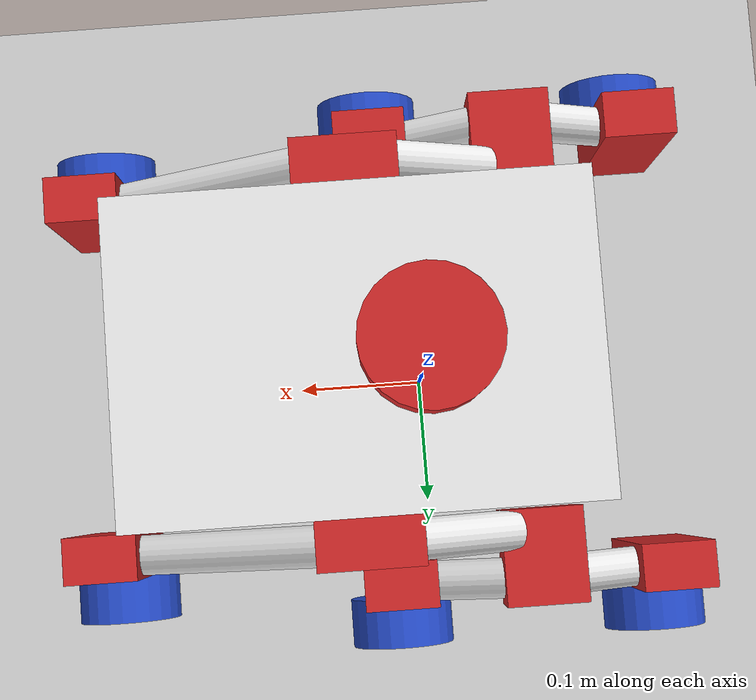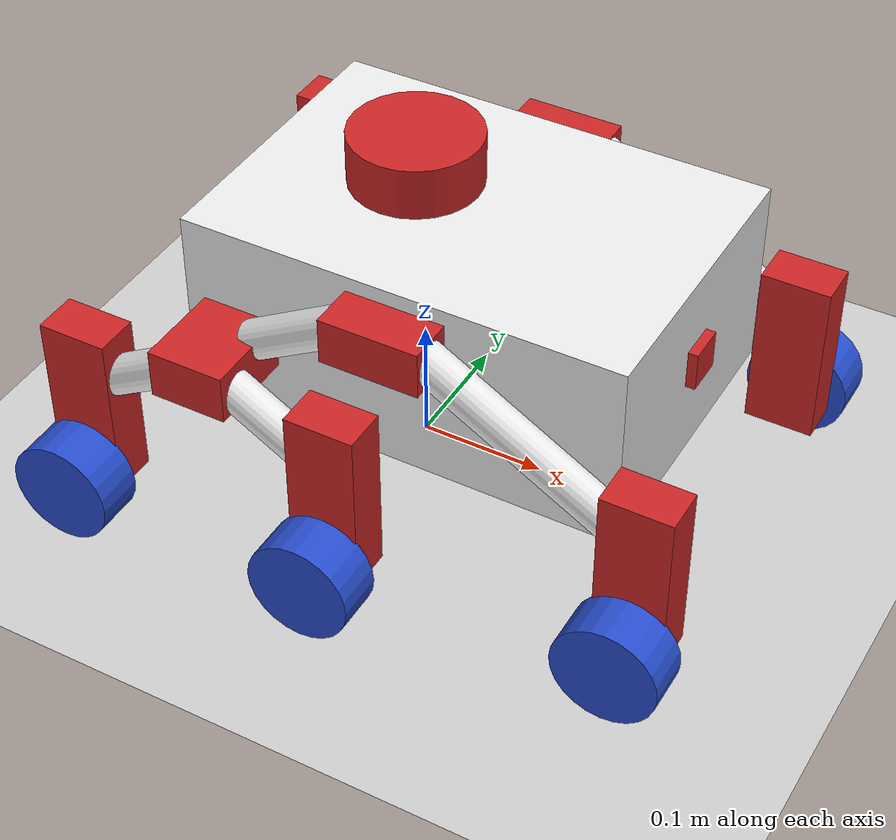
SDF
<sdf version="1.7">
 <world name="default">
  <light name="sun" type="directional">
   <pose>0 0 10 0 -0 0</pose>
   <diffuse>0.8 0.8 0.8 1</diffuse>
   <specular>0.2 0.2 0.2 1</specular>
   <attenuation>
    <range>1000</range>
    <constant>0.9</constant>
    <linear>0.01</linear>
    <quadratic>0.001</quadratic>
   </attenuation>
   <direction>-0.5 0.1 -0.9</direction>
   <spot><inner_angle>0</inner_angle><outer_angle>0</outer_angle><falloff>0</falloff></spot>
  </light>
  <model name="ground_plane">
   <static>1</static>
   <link name="link">
    <collision name="collision">
     <geometry><plane><normal>0 0 1</normal><size>100 100</size></plane></geometry>
     <surface><friction><ode><mu>100</mu><mu2>50</mu2></ode></friction></surface>
    </collision>
    <visual name="visual">
     <cast_shadows>0</cast_shadows>
     <geometry><plane><normal>0 0 1</normal><size>100 100</size></plane></geometry>
     <material>
      <script><uri>file://media/materials/scripts/gazebo.material</uri><name>Gazebo/Grey</name></script>
     </material>
    </visual>
   </link>
  </model>
  <gravity>0 0 -9.8</gravity>
  <magnetic_field>6e-06 2.3e-05 -4.2e-05</magnetic_field>
  <atmosphere type="adiabatic"/>
  <physics type="ode">
   <max_step_size>0.001</max_step_size>
   <real_time_factor>1</real_time_factor>
   <real_time_update_rate>1000</real_time_update_rate>
  </physics>
  <scene><ambient>0.4 0.4 0.4 1</ambient><background>0.7 0.7 0.7 1</background><shadows>1</shadows></scene>
  <audio><device>default</device></audio>
  <spherical_coordinates>
   <surface_model>EARTH_WGS84</surface_model>
   <latitude_deg>0</latitude_deg>
   <longitude_deg>0</longitude_deg>
   <elevation>0</elevation>
   <heading_deg>0</heading_deg>
  </spherical_coordinates>
  <model name="my_bot">
   <link name="base_link">
    <inertial>
     <pose>0.019607 -0 0.047143 0 -0 0</pose>
     <mass>2.8</mass>
     <inertia>
      <ixx>0.0695357</ixx>
      <ixy>7.95861e-11</ixy>
      <ixz>0.000761689</ixz>
      <iyy>0.0640238</iyy>
      <iyz>-1.35e-05</iyz>
      <izz>0.11307</izz>
     </inertia>
    </inertial>
    <collision name="base_link_fixed_joint_lump__chassis_collision">
     <pose>0.05 0 0.075 0 -0 0</pose>
     <geometry><box><size>0.345 0.234 0.15</size></box></geometry>
    </collision>
    <collision name="base_link_fixed_joint_lump__laser_frame_collision_1">
     <pose>0 0 0.175 0 -0 0</pose>
     <geometry><cylinder><length>0.04</length><radius>0.05</radius></cylinder></geometry>
    </collision>
    <collision name="base_link_fixed_joint_lump__left_mount_atas_collision_2">
     <pose>0.05 0.135 0.12 0 -0 0</pose>
     <geometry><box><size>0.077 0.036 0.036</size></box></geometry>
    </collision>
    <collision name="base_link_fixed_joint_lump__left_mount_bawah_collision_3">
     <pose>-0.075 0.155 0.07 0 -0 1.5708</pose>
     <geometry><box><size>0.07 0.06 0.038</size></box></geometry>
    </collision>
    <collision name="base_link_fixed_joint_lump__left_mount_motor_belakang_collision_4">
     <pose>0.25 0.135 0.005 0 -0 0</pose>
     <geometry><box><size>0.0545 0.0348 0.135211</size></box></geometry>
    </collision>
    <collision name="base_link_fixed_joint_lump__left_mount_motor_depan_collision_5">
     <pose>-0.175 0.17 0.005 0 -0 0</pose>
     <geometry><box><size>0.0545 0.0348 0.135211</size></box></geometry>
    </collision>
    <collision name="base_link_fixed_joint_lump__left_mount_motor_tengah_collision_6">
     <pose>0.03 0.17 0.005 0 -0 0</pose>
     <geometry><box><size>0.0545 0.0348 0.135211</size></box></geometry>
    </collision>
    <collision name="base_link_fixed_joint_lump__left_suspensi_dua_collision_7">
     <pose>-0.018 0.135 0.1025 0 1.0472 0</pose>
     <geometry><cylinder><length>0.085</length><radius>0.015</radius></cylinder></geometry>
    </collision>
    <collision name="base_link_fixed_joint_lump__left_suspensi_empat_collision_8">
     <pose>-0.125 0.17 0.05 0 1.0472 0</pose>
     <geometry><cylinder><length>0.071</length><radius>0.015</radius></cylinder></geometry>
    </collision>
    <collision name="base_link_fixed_joint_lump__left_suspensi_satu_collision_9">
     <pose>0.16 0.135 0.078 3.14159 1.04719 3.14159</pose>
     <geometry><cylinder><length>0.183</length><radius>0.015</radius></cylinder></geometry>
    </collision>
    <collision name="base_link_fixed_joint_lump__left_suspensi_tiga_collision_10">
     <pose>-0.0225 0.17 0.05 3.14159 1.04719 3.14159</pose>
     <geometry><cylinder><length>0.071</length><radius>0.015</radius></cylinder></geometry>
    </collision>
    <collision name="base_link_fixed_joint_lump__left_wheel_belakang_collision_11">
     <pose>-0.175 0.205 -0.05 -1.5708 0 0</pose>
     <geometry><cylinder><length>0.038</length><radius>0.0405</radius></cylinder></geometry>
     <surface><friction><ode><mu>0.001</mu><mu2>0.001</mu2></ode></friction></surface>
    </collision>
    <collision name="base_link_fixed_joint_lump__left_wheel_depan_collision_12">
     <pose>0.25 0.17 -0.05 -1.5708 0 0</pose>
     <geometry><cylinder><length>0.038</length><radius>0.0405</radius></cylinder></geometry>
     <surface><friction><ode><mu>0.001</mu><mu2>0.001</mu2></ode></friction></surface>
    </collision>
    <collision name="base_link_fixed_joint_lump__right_mount_atas_collision_13">
     <pose>0.05 -0.135 0.12 0 -0 0</pose>
     <geometry><box><size>0.077 0.036 0.036</size></box></geometry>
    </collision>
    <collision name="base_link_fixed_joint_lump__right_mount_bawah_collision_14">
     <pose>-0.075 -0.155 0.07 0 -0 1.5708</pose>
     <geometry><box><size>0.07 0.06 0.038</size></box></geometry>
    </collision>
    <collision name="base_link_fixed_joint_lump__right_mount_motor_belakang_collision_15">
     <pose>0.25 -0.135 0.005 0 -0 0</pose>
     <geometry><box><size>0.0545 0.0348 0.135211</size></box></geometry>
    </collision>
    <collision name="base_link_fixed_joint_lump__right_mount_motor_depan_collision_16">
     <pose>-0.175 -0.17 0.005 0 -0 0</pose>
     <geometry><box><size>0.0545 0.0348 0.135211</size></box></geometry>
    </collision>
    <collision name="base_link_fixed_joint_lump__right_mount_motor_tengah_collision_17">
     <pose>0.03 -0.17 0.005 0 -0 0</pose>
     <geometry><box><size>0.0545 0.0348 0.135211</size></box></geometry>
    </collision>
    <collision name="base_link_fixed_joint_lump__right_suspensi_dua_collision_18">
     <pose>-0.018 -0.135 0.1025 0 1.0472 0</pose>
     <geometry><cylinder><length>0.085</length><radius>0.015</radius></cylinder></geometry>
    </collision>
    <collision name="base_link_fixed_joint_lump__right_suspensi_empat_collision_19">
     <pose>-0.125 -0.17 0.05 0 1.0472 0</pose>
     <geometry><cylinder><length>0.071</length><radius>0.015</radius></cylinder></geometry>
    </collision>
    <collision name="base_link_fixed_joint_lump__right_suspensi_satu_collision_20">
     <pose>0.16 -0.135 0.077 3.14159 1.04719 3.14159</pose>
     <geometry><cylinder><length>0.183</length><radius>0.015</radius></cylinder></geometry>
    </collision>
    <collision name="base_link_fixed_joint_lump__right_suspensi_tiga_collision_21">
     <pose>-0.0225 -0.17 0.05 3.14159 1.04719 3.14159</pose>
     <geometry><cylinder><length>0.071</length><radius>0.015</radius></cylinder></geometry>
    </collision>
    <collision name="base_link_fixed_joint_lump__right_wheel_belakang_collision_22">
     <pose>-0.175 -0.205 -0.05 -1.5708 0 0</pose>
     <geometry><cylinder><length>0.038</length><radius>0.0405</radius></cylinder></geometry>
     <surface><friction><ode><mu>0.001</mu><mu2>0.001</mu2></ode></friction></surface>
    </collision>
    <collision name="base_link_fixed_joint_lump__right_wheel_depan_collision_23">
     <pose>0.25 -0.17 -0.05 -1.5708 0 0</pose>
     <geometry><cylinder><length>0.038</length><radius>0.0405</radius></cylinder></geometry>
     <surface><friction><ode><mu>0.001</mu><mu2>0.001</mu2></ode></friction></surface>
    </collision>
    <visual name="base_link_fixed_joint_lump__chassis_visual">
     <pose>0.05 0 0.075 0 -0 0</pose>
     <geometry><box><size>0.345 0.234 0.15</size></box></geometry>
     <material>
      <script><name>Gazebo/White</name><uri>file://media/materials/scripts/gazebo.material</uri></script>
     </material>
    </visual>
    <visual name="base_link_fixed_joint_lump__camera_link_visual_1">
     <pose>0.225 0 0.08 0 -0 0</pose>
     <geometry><box><size>0.01 0.03 0.03</size></box></geometry>
     <material>
      <script><name>Gazebo/Red</name><uri>file://media/materials/scripts/gazebo.material</uri></script>
     </material>
    </visual>
    <visual name="base_link_fixed_joint_lump__laser_frame_visual_2">
     <pose>0 0 0.175 0 -0 0</pose>
     <geometry><cylinder><length>0.04</length><radius>0.05</radius></cylinder></geometry>
     <material>
      <script><name>Gazebo/Red</name><uri>file://media/materials/scripts/gazebo.material</uri></script>
     </material>
    </visual>
    <visual name="base_link_fixed_joint_lump__left_mount_atas_visual_3">
     <pose>0.05 0.135 0.12 0 -0 0</pose>
     <geometry><box><size>0.077 0.036 0.036</size></box></geometry>
     <material>
      <script><name>Gazebo/Red</name><uri>file://media/materials/scripts/gazebo.material</uri></script>
     </material>
    </visual>
    <visual name="base_link_fixed_joint_lump__left_mount_bawah_visual_4">
     <pose>-0.075 0.155 0.07 0 -0 1.5708</pose>
     <geometry><box><size>0.07 0.06 0.038</size></box></geometry>
     <material>
      <script><name>Gazebo/Red</name><uri>file://media/materials/scripts/gazebo.material</uri></script>
     </material>
    </visual>
    <visual name="base_link_fixed_joint_lump__left_mount_motor_belakang_visual_5">
     <pose>0.25 0.135 0.005 0 -0 0</pose>
     <geometry><box><size>0.0545 0.0348 0.135211</size></box></geometry>
     <material>
      <script><name>Gazebo/Red</name><uri>file://media/materials/scripts/gazebo.material</uri></script>
     </material>
    </visual>
    <visual name="base_link_fixed_joint_lump__left_mount_motor_depan_visual_6">
     <pose>-0.175 0.17 0.005 0 -0 0</pose>
     <geometry><box><size>0.0545 0.0348 0.135211</size></box></geometry>
     <material>
      <script><name>Gazebo/Red</name><uri>file://media/materials/scripts/gazebo.material</uri></script>
     </material>
    </visual>
    <visual name="base_link_fixed_joint_lump__left_mount_motor_tengah_visual_7">
     <pose>0.03 0.17 0.005 0 -0 0</pose>
     <geometry><box><size>0.0545 0.0348 0.135211</size></box></geometry>
     <material>
      <script><name>Gazebo/Red</name><uri>file://media/materials/scripts/gazebo.material</uri></script>
     </material>
    </visual>
    <visual name="base_link_fixed_joint_lump__left_suspensi_dua_visual_8">
     <pose>-0.018 0.135 0.1025 0 1.0472 0</pose>
     <geometry><cylinder><length>0.085</length><radius>0.015</radius></cylinder></geometry>
     <material>
      <script><name>Gazebo/White</name><uri>file://media/materials/scripts/gazebo.material</uri></script>
     </material>
    </visual>
    <visual name="base_link_fixed_joint_lump__left_suspensi_empat_visual_9">
     <pose>-0.125 0.17 0.05 0 1.0472 0</pose>
     <geometry><cylinder><length>0.071</length><radius>0.015</radius></cylinder></geometry>
     <material>
      <script><name>Gazebo/White</name><uri>file://media/materials/scripts/gazebo.material</uri></script>
     </material>
    </visual>
    <visual name="base_link_fixed_joint_lump__left_suspensi_satu_visual_10">
     <pose>0.16 0.135 0.078 3.14159 1.04719 3.14159</pose>
     <geometry><cylinder><length>0.183</length><radius>0.015</radius></cylinder></geometry>
     <material>
      <script><name>Gazebo/White</name><uri>file://media/materials/scripts/gazebo.material</uri></script>
     </material>
    </visual>
    <visual name="base_link_fixed_joint_lump__left_suspensi_tiga_visual_11">
     <pose>-0.0225 0.17 0.05 3.14159 1.04719 3.14159</pose>
     <geometry><cylinder><length>0.071</length><radius>0.015</radius></cylinder></geometry>
     <material>
      <script><name>Gazebo/White</name><uri>file://media/materials/scripts/gazebo.material</uri></script>
     </material>
    </visual>
    <visual name="base_link_fixed_joint_lump__left_wheel_belakang_visual_12">
     <pose>-0.175 0.205 -0.05 -1.5708 0 0</pose>
     <geometry><cylinder><length>0.038</length><radius>0.0405</radius></cylinder></geometry>
     <material>
      <script><name>Gazebo/Blue</name><uri>file://media/materials/scripts/gazebo.material</uri></script>
     </material>
    </visual>
    <visual name="base_link_fixed_joint_lump__left_wheel_depan_visual_13">
     <pose>0.25 0.17 -0.05 -1.5708 0 0</pose>
     <geometry><cylinder><length>0.038</length><radius>0.0405</radius></cylinder></geometry>
     <material>
      <script><name>Gazebo/Blue</name><uri>file://media/materials/scripts/gazebo.material</uri></script>
     </material>
    </visual>
    <visual name="base_link_fixed_joint_lump__right_mount_atas_visual_14">
     <pose>0.05 -0.135 0.12 0 -0 0</pose>
     <geometry><box><size>0.077 0.036 0.036</size></box></geometry>
     <material>
      <script><name>Gazebo/Red</name><uri>file://media/materials/scripts/gazebo.material</uri></script>
     </material>
    </visual>
    <visual name="base_link_fixed_joint_lump__right_mount_bawah_visual_15">
     <pose>-0.075 -0.155 0.07 0 -0 1.5708</pose>
     <geometry><box><size>0.07 0.06 0.038</size></box></geometry>
     <material>
      <script><name>Gazebo/Red</name><uri>file://media/materials/scripts/gazebo.material</uri></script>
     </material>
    </visual>
    <visual name="base_link_fixed_joint_lump__right_mount_motor_belakang_visual_16">
     <pose>0.25 -0.135 0.005 0 -0 0</pose>
     <geometry><box><size>0.0545 0.0348 0.135211</size></box></geometry>
     <material>
      <script><name>Gazebo/Red</name><uri>file://media/materials/scripts/gazebo.material</uri></script>
     </material>
    </visual>
    <visual name="base_link_fixed_joint_lump__right_mount_motor_depan_visual_17">
     <pose>-0.175 -0.17 0.005 0 -0 0</pose>
     <geometry><box><size>0.0545 0.0348 0.135211</size></box></geometry>
     <material>
      <script><name>Gazebo/Red</name><uri>file://media/materials/scripts/gazebo.material</uri></script>
     </material>
    </visual>
    <visual name="base_link_fixed_joint_lump__right_mount_motor_tengah_visual_18">
     <pose>0.03 -0.17 0.005 0 -0 0</pose>
     <geometry><box><size>0.0545 0.0348 0.135211</size></box></geometry>
     <material>
      <script><name>Gazebo/Red</name><uri>file://media/materials/scripts/gazebo.material</uri></script>
     </material>
    </visual>
    <visual name="base_link_fixed_joint_lump__right_suspensi_dua_visual_19">
     <pose>-0.018 -0.135 0.1025 0 1.0472 0</pose>
     <geometry><cylinder><length>0.085</length><radius>0.015</radius></cylinder></geometry>
     <material>
      <script><name>Gazebo/White</name><uri>file://media/materials/scripts/gazebo.material</uri></script>
     </material>
    </visual>
    <visual name="base_link_fixed_joint_lump__right_suspensi_empat_visual_20">
     <pose>-0.125 -0.17 0.05 0 1.0472 0</pose>
     <geometry><cylinder><length>0.071</length><radius>0.015</radius></cylinder></geometry>
     <material>
      <script><name>Gazebo/White</name><uri>file://media/materials/scripts/gazebo.material</uri></script>
     </material>
    </visual>
    <visual name="base_link_fixed_joint_lump__right_suspensi_satu_visual_21">
     <pose>0.16 -0.135 0.077 3.14159 1.04719 3.14159</pose>
     <geometry><cylinder><length>0.183</length><radius>0.015</radius></cylinder></geometry>
     <material>
      <script><name>Gazebo/White</name><uri>file://media/materials/scripts/gazebo.material</uri></script>
     </material>
    </visual>
    <visual name="base_link_fixed_joint_lump__right_suspensi_tiga_visual_22">
     <pose>-0.0225 -0.17 0.05 3.14159 1.04719 3.14159</pose>
     <geometry><cylinder><length>0.071</length><radius>0.015</radius></cylinder></geometry>
     <material>
      <script><name>Gazebo/White</name><uri>file://media/materials/scripts/gazebo.material</uri></script>
     </material>
    </visual>
    <visual name="base_link_fixed_joint_lump__right_wheel_belakang_visual_23">
     <pose>-0.175 -0.205 -0.05 -1.5708 0 0</pose>
     <geometry><cylinder><length>0.038</length><radius>0.0405</radius></cylinder></geometry>
     <material>
      <script><name>Gazebo/Blue</name><uri>file://media/materials/scripts/gazebo.material</uri></script>
     </material>
    </visual>
    <visual name="base_link_fixed_joint_lump__right_wheel_depan_visual_24">
     <pose>0.25 -0.17 -0.05 -1.5708 0 0</pose>
     <geometry><cylinder><length>0.038</length><radius>0.0405</radius></cylinder></geometry>
     <material>
      <script><name>Gazebo/Blue</name><uri>file://media/materials/scripts/gazebo.material</uri></script>
     </material>
    </visual>
    <sensor name="camera" type="depth">
     <visualize>1</visualize>
     <update_rate>10</update_rate>
     <camera>
      <horizontal_fov>1.089</horizontal_fov>
      <image><format>B8G8R8</format><width>640</width><height>480</height></image>
      <clip><near>0.05</near><far>8</far></clip>
     </camera>
     <plugin name="camera_controller" filename="libgazebo_ros_camera.so">
      <frame_name>camera_link_optical</frame_name>
      <min_depth>0.1</min_depth>
      <max_depth>100.0</max_depth>
     </plugin>
     <pose>0.225 0 0.08 0 -0 0</pose>
    </sensor>
    <sensor name="laser" type="ray">
     <visualize>1</visualize>
     <update_rate>10</update_rate>
     <ray>
      <scan>
       <horizontal>
        <samples>360</samples>
        <min_angle>-3.14</min_angle>
        <max_angle>3.14</max_angle>
        <resolution>1</resolution>
       </horizontal>
       <vertical><samples>1</samples><min_angle>0</min_angle><max_angle>0</max_angle></vertical>
      </scan>
      <range><min>0.3</min><max>12</max></range>
     </ray>
     <plugin name="laser_controller" filename="libgazebo_ros_ray_sensor.so">
      <ros><argument>~/out:=scan</argument></ros>
      <output_type>sensor_msgs/LaserScan</output_type>
      <frame_name>laser_frame</frame_name>
     </plugin>
     <pose>0 0 0.175 0 -0 0</pose>
    </sensor>
   </link>
   <joint name="left_wheel_Tengah_joint" type="revolute">
    <pose relative_to="base_link">0.03 0.205 -0.05 -1.5708 0 0</pose>
    <parent>base_link</parent>
    <child>left_wheel_tengah</child>
    <axis>
     <xyz>0 0 1</xyz>
     <limit><lower>-1e+16</lower><upper>1e+16</upper></limit>
     <dynamics><spring_reference>0</spring_reference><spring_stiffness>0</spring_stiffness></dynamics>
    </axis>
   </joint>
   <link name="left_wheel_tengah">
    <pose relative_to="left_wheel_Tengah_joint">0 0 0 0 -0 0</pose>
    <inertial>
     <mass>0.1</mass>
     <inertia>
      <ixx>5.30396e-05</ixx>
      <ixy>0</ixy>
      <ixz>0</ixz>
      <iyy>5.30396e-05</iyy>
      <iyz>0</iyz>
      <izz>8.20125e-05</izz>
     </inertia>
    </inertial>
    <collision name="left_wheel_tengah_collision">
     <geometry><cylinder><length>0.038</length><radius>0.0405</radius></cylinder></geometry>
    </collision>
    <visual name="left_wheel_tengah_visual">
     <geometry><cylinder><length>0.038</length><radius>0.0405</radius></cylinder></geometry>
     <material>
      <script><name>Gazebo/Blue</name><uri>file://media/materials/scripts/gazebo.material</uri></script>
     </material>
    </visual>
   </link>
   <joint name="right_wheel_Tengah_joint" type="revolute">
    <pose relative_to="base_link">0.03 -0.205 -0.05 1.5708 -0 0</pose>
    <parent>base_link</parent>
    <child>right_wheel_tengah</child>
    <axis>
     <xyz>0 0 -1</xyz>
     <limit><lower>-1e+16</lower><upper>1e+16</upper></limit>
     <dynamics><spring_reference>0</spring_reference><spring_stiffness>0</spring_stiffness></dynamics>
    </axis>
   </joint>
   <link name="right_wheel_tengah">
    <pose relative_to="right_wheel_Tengah_joint">0 0 0 0 -0 0</pose>
    <inertial>
     <mass>0.1</mass>
     <inertia>
      <ixx>5.30396e-05</ixx>
      <ixy>0</ixy>
      <ixz>0</ixz>
      <iyy>5.30396e-05</iyy>
      <iyz>0</iyz>
      <izz>8.20125e-05</izz>
     </inertia>
    </inertial>
    <collision name="right_wheel_tengah_collision">
     <geometry><cylinder><length>0.038</length><radius>0.0405</radius></cylinder></geometry>
    </collision>
    <visual name="right_wheel_tengah_visual">
     <geometry><cylinder><length>0.038</length><radius>0.0405</radius></cylinder></geometry>
     <material>
      <script><name>Gazebo/Blue</name><uri>file://media/materials/scripts/gazebo.material</uri></script>
     </material>
    </visual>
   </link>
   <static>0</static>
   <plugin name="gazebo_ros2_control" filename="libgazebo_ros2_control.so">
    <parameters>/home/rizqi/dev_ws/install/my_bot/share/my_bot/config/my_controllers.yaml</parameters>
   </plugin>
   <pose>-0.000587 -0.009802 0.0905 0 -0 -0.002024</pose>
  </model>
 </world>
</sdf>
